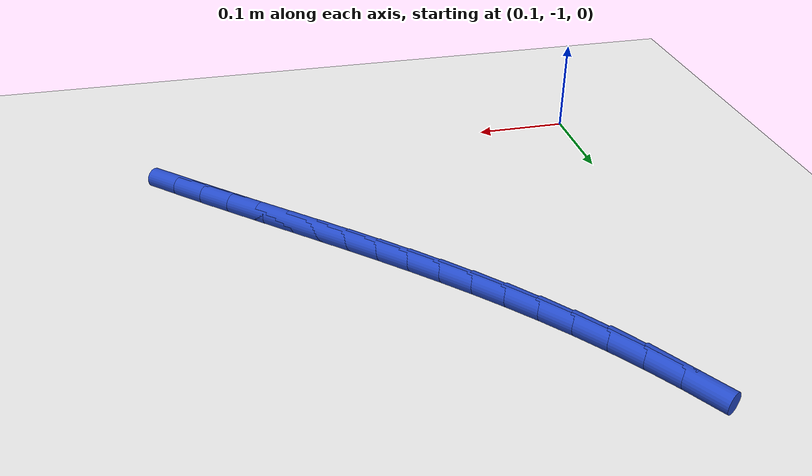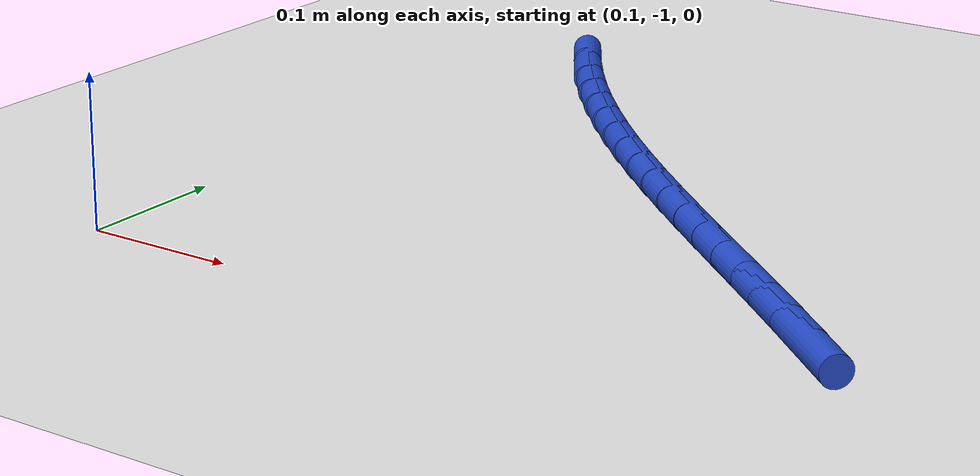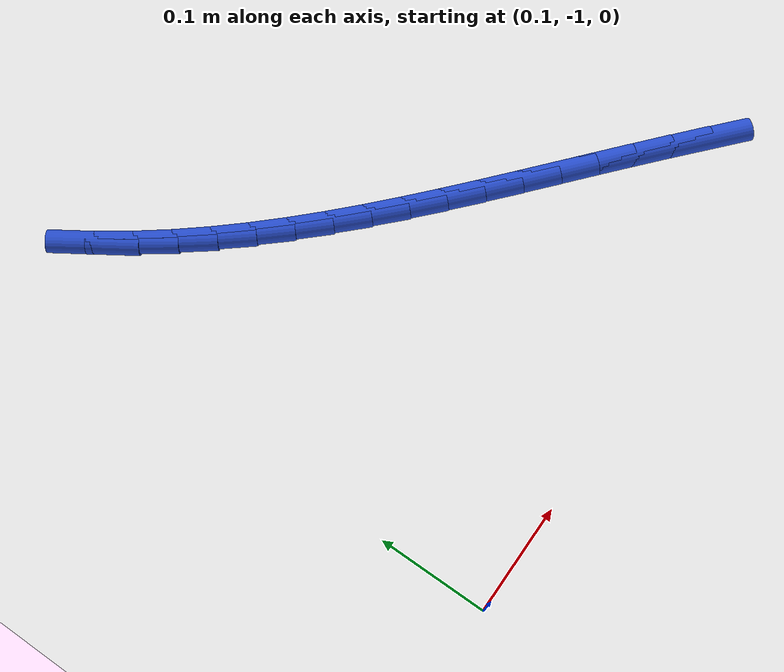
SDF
<sdf version="1.6">
 <world name="default">
  <model name="ground_plane">
   <static>1</static>
   <link name="link">
    <collision name="collision">
     <geometry><plane><normal>0 0 1</normal><size>100 100</size></plane></geometry>
     <surface><friction><ode><mu>100</mu><mu2>50</mu2></ode></friction></surface>
    </collision>
    <visual name="visual">
     <cast_shadows>0</cast_shadows>
     <geometry><plane><normal>0 0 1</normal><size>100 100</size></plane></geometry>
     <material>
      <script><uri>file://media/materials/scripts/gazebo.material</uri><name>Gazebo/WhiteGlow</name></script>
     </material>
    </visual>
   </link>
  </model>
  <model name="line">
   <link name="link_177">
    <pose>0.5485274138595058 -0.9321502193516973 0.01 0 1.57 -0.7316401930865231</pose>
    <collision name="collision">
     <geometry><cylinder><radius>0.01</radius><length>0.08</length></cylinder></geometry>
    </collision>
    <visual name="visual">
     <material>
      <script><name>Gazebo/Blue</name><uri>file://media/materials/scripts/gazebo.material</uri></script>
     </material>
     <geometry><cylinder><radius>0.01</radius><length>0.08</length></cylinder></geometry>
    </visual>
   </link>
   <link name="link_178">
    <pose>0.5221865960302389 -0.9084994401427657 0.01 0 1.57 -0.7225101240482733</pose>
    <collision name="collision">
     <geometry><cylinder><radius>0.01</radius><length>0.08</length></cylinder></geometry>
    </collision>
    <visual name="visual">
     <material>
      <script><name>Gazebo/Blue</name><uri>file://media/materials/scripts/gazebo.material</uri></script>
     </material>
     <geometry><cylinder><radius>0.01</radius><length>0.08</length></cylinder></geometry>
    </visual>
   </link>
   <link name="link_179">
    <pose>0.49587744703778297 -0.8853074322679293 0.01 0 1.57 -0.7165965002388911</pose>
    <collision name="collision">
     <geometry><cylinder><radius>0.01</radius><length>0.08</length></cylinder></geometry>
    </collision>
    <visual name="visual">
     <material>
      <script><name>Gazebo/Blue</name><uri>file://media/materials/scripts/gazebo.material</uri></script>
     </material>
     <geometry><cylinder><radius>0.01</radius><length>0.08</length></cylinder></geometry>
    </visual>
   </link>
   <link name="link_180">
    <pose>0.46966254188216255 -0.8624725678514444 0.01 0 1.57 -0.713995886561796</pose>
    <collision name="collision">
     <geometry><cylinder><radius>0.01</radius><length>0.08</length></cylinder></geometry>
    </collision>
    <visual name="visual">
     <material>
      <script><name>Gazebo/Blue</name><uri>file://media/materials/scripts/gazebo.material</uri></script>
     </material>
     <geometry><cylinder><radius>0.01</radius><length>0.08</length></cylinder></geometry>
    </visual>
   </link>
   <link name="link_181">
    <pose>0.44360445556340244 -0.8398932190175686 0.01 0 1.57 -0.7147959062911287</pose>
    <collision name="collision">
     <geometry><cylinder><radius>0.01</radius><length>0.08</length></cylinder></geometry>
    </collision>
    <visual name="visual">
     <material>
      <script><name>Gazebo/Blue</name><uri>file://media/materials/scripts/gazebo.material</uri></script>
     </material>
     <geometry><cylinder><radius>0.01</radius><length>0.08</length></cylinder></geometry>
    </visual>
   </link>
   <link name="link_182">
    <pose>0.417765763081527 -0.8174677578905587 0.01 0 1.57 -0.7190752312467165</pose>
    <collision name="collision">
     <geometry><cylinder><radius>0.01</radius><length>0.08</length></cylinder></geometry>
    </collision>
    <visual name="visual">
     <material>
      <script><name>Gazebo/Blue</name><uri>file://media/materials/scripts/gazebo.material</uri></script>
     </material>
     <geometry><cylinder><radius>0.01</radius><length>0.08</length></cylinder></geometry>
    </visual>
   </link>
   <link name="link_183">
    <pose>0.39220903943656044 -0.7950945565946713 0.01 0 1.57 -0.7269024641229122</pose>
    <collision name="collision">
     <geometry><cylinder><radius>0.01</radius><length>0.08</length></cylinder></geometry>
    </collision>
    <visual name="visual">
     <material>
      <script><name>Gazebo/Blue</name><uri>file://media/materials/scripts/gazebo.material</uri></script>
     </material>
     <geometry><cylinder><radius>0.01</radius><length>0.08</length></cylinder></geometry>
    </visual>
   </link>
   <link name="link_184">
    <pose>0.3669968596285285 -0.7726719872541647 0.01 0 1.57 -0.7383337376897695</pose>
    <collision name="collision">
     <geometry><cylinder><radius>0.01</radius><length>0.08</length></cylinder></geometry>
    </collision>
    <visual name="visual">
     <material>
      <script><name>Gazebo/Blue</name><uri>file://media/materials/scripts/gazebo.material</uri></script>
     </material>
     <geometry><cylinder><radius>0.01</radius><length>0.08</length></cylinder></geometry>
    </visual>
   </link>
   <link name="link_185">
    <pose>0.3421917986574551 -0.7500984219932951 0.01 0 1.57 -0.7534089039921655</pose>
    <collision name="collision">
     <geometry><cylinder><radius>0.01</radius><length>0.08</length></cylinder></geometry>
    </collision>
    <visual name="visual">
     <material>
      <script><name>Gazebo/Blue</name><uri>file://media/materials/scripts/gazebo.material</uri></script>
     </material>
     <geometry><cylinder><radius>0.01</radius><length>0.08</length></cylinder></geometry>
    </visual>
   </link>
   <link name="link_186">
    <pose>0.317856431523365 -0.7272722329363202 0.01 0 1.57 -0.7721462642886412</pose>
    <collision name="collision">
     <geometry><cylinder><radius>0.01</radius><length>0.08</length></cylinder></geometry>
    </collision>
    <visual name="visual">
     <material>
      <script><name>Gazebo/Blue</name><uri>file://media/materials/scripts/gazebo.material</uri></script>
     </material>
     <geometry><cylinder><radius>0.01</radius><length>0.08</length></cylinder></geometry>
    </visual>
   </link>
   <link name="link_187">
    <pose>0.29405333322628274 -0.7040917922074965 0.01 0 1.57 -0.794535911032739</pose>
    <collision name="collision">
     <geometry><cylinder><radius>0.01</radius><length>0.08</length></cylinder></geometry>
    </collision>
    <visual name="visual">
     <material>
      <script><name>Gazebo/Blue</name><uri>file://media/materials/scripts/gazebo.material</uri></script>
     </material>
     <geometry><cylinder><radius>0.01</radius><length>0.08</length></cylinder></geometry>
    </visual>
   </link>
   <link name="link_188">
    <pose>0.2708450787662329 -0.6804554719310812 0.01 0 1.57 -0.8205319279405155</pose>
    <collision name="collision">
     <geometry><cylinder><radius>0.01</radius><length>0.08</length></cylinder></geometry>
    </collision>
    <visual name="visual">
     <material>
      <script><name>Gazebo/Blue</name><uri>file://media/materials/scripts/gazebo.material</uri></script>
     </material>
     <geometry><cylinder><radius>0.01</radius><length>0.08</length></cylinder></geometry>
    </visual>
   </link>
   <link name="link_189">
    <pose>0.24829424314323964 -0.6562616442313309 0.01 0 1.57 -0.8500439257443545</pose>
    <collision name="collision">
     <geometry><cylinder><radius>0.01</radius><length>0.08</length></cylinder></geometry>
    </collision>
    <visual name="visual">
     <material>
      <script><name>Gazebo/Blue</name><uri>file://media/materials/scripts/gazebo.material</uri></script>
     </material>
     <geometry><cylinder><radius>0.01</radius><length>0.08</length></cylinder></geometry>
    </visual>
   </link>
   <link name="link_190">
    <pose>0.2264634013573286 -0.631408681232504 0.01 0 1.57 -0.8829286655050991</pose>
    <collision name="collision">
     <geometry><cylinder><radius>0.01</radius><length>0.08</length></cylinder></geometry>
    </collision>
    <visual name="visual">
     <material>
      <script><name>Gazebo/Blue</name><uri>file://media/materials/scripts/gazebo.material</uri></script>
     </material>
     <geometry><cylinder><radius>0.01</radius><length>0.08</length></cylinder></geometry>
    </visual>
   </link>
   <link name="link_191">
    <pose>0.20541512840852386 -0.605794955058857 0.01 0 1.57 -0.918982799293548</pose>
    <collision name="collision">
     <geometry><cylinder><radius>0.01</radius><length>0.08</length></cylinder></geometry>
    </collision>
    <visual name="visual">
     <material>
      <script><name>Gazebo/Blue</name><uri>file://media/materials/scripts/gazebo.material</uri></script>
     </material>
     <geometry><cylinder><radius>0.01</radius><length>0.08</length></cylinder></geometry>
    </visual>
   </link>
   <link name="link_192">
    <pose>0.18521199929685 -0.5793188378346467 0.01 0 1.57 -0.9578873569450009</pose>
    <collision name="collision">
     <geometry><cylinder><radius>0.01</radius><length>0.08</length></cylinder></geometry>
    </collision>
    <visual name="visual">
     <material>
      <script><name>Gazebo/Blue</name><uri>file://media/materials/scripts/gazebo.material</uri></script>
     </material>
     <geometry><cylinder><radius>0.01</radius><length>0.08</length></cylinder></geometry>
    </visual>
   </link>
   <link name="link_193">
    <pose>0.1659160875218695 -0.5518809401261815 0.01 0 1.57 -0.9975698921740285</pose>
    <collision name="collision">
     <geometry><cylinder><radius>0.01</radius><length>0.08</length></cylinder></geometry>
    </collision>
    <visual name="visual">
     <material>
      <script><name>Gazebo/Blue</name><uri>file://media/materials/scripts/gazebo.material</uri></script>
     </material>
     <geometry><cylinder><radius>0.01</radius><length>0.08</length></cylinder></geometry>
    </visual>
   </link>
  </model>
 </world>
</sdf>
